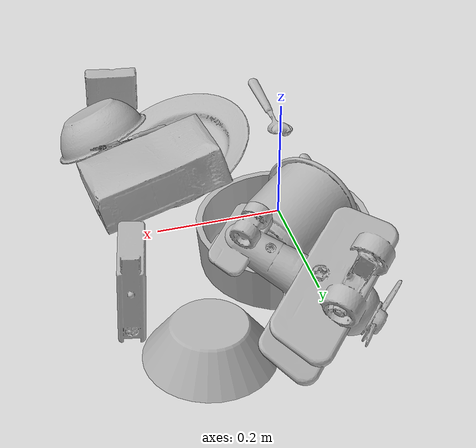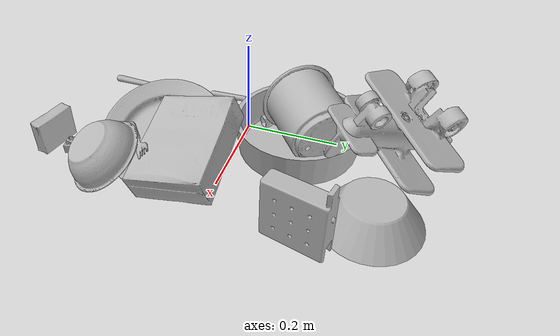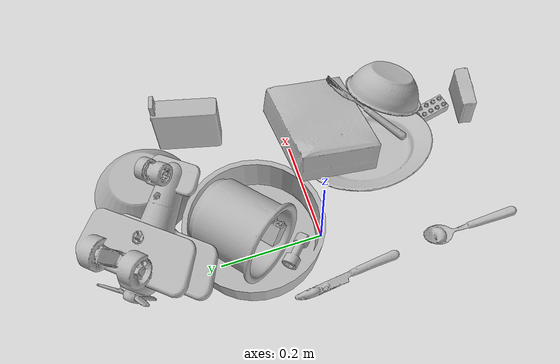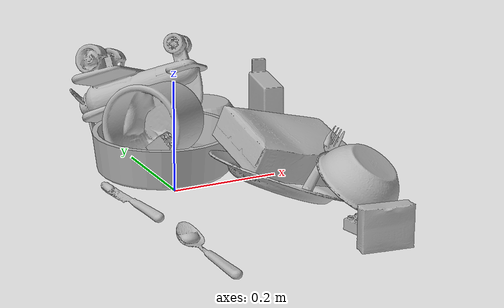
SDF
<sdf version="1.4">
  <world name="default">
    <light name="light1" type="point">
      <pose>0 0 1 0 0 0</pose>
      <diffuse>3 3 3 1</diffuse>
      <specular>3 3 3 1</specular>
    </light>
    <light name="light2" type="point">
      <pose>0 0.5 2 0 0 0</pose>
      <diffuse>1 1 1 1</diffuse>
      <specular>1 1 1 1</specular>
    </light>
    <light name="light3" type="point">
      <pose>0 0.5 2 0 0 0</pose>
      <diffuse>3 3 3 1</diffuse>
      <specular>3 3 3 1</specular>
    </light>
    <scene>
      <ambient>0.7 0.7 0.7</ambient>
    </scene>
    <model name="plate1">
      <link name="link_plate1">
        <collision name="default">
          <geometry>
            <mesh>
              <uri>model://plate/collision_meshes/collision.obj</uri>
              <scale>1.0 1.0 1.0</scale>
            </mesh>
          </geometry>
          <surface>
            <friction>
              <ode>
                <mu>0.5</mu>
                <mu2>0.5</mu2>
              </ode>
            </friction>
          <contact>
        <ode>
            <max_vel>0</max_vel>
            <min_depth>0.0001</min_depth>
            <kp>1e8</kp>
        </ode>
    </contact></surface>
        </collision>
        <visual name="default">
          <geometry>
            <mesh>
              <uri>model://plate/visual_meshes/visual.dae</uri>
              <scale>1.0 1.0 1.0</scale>
            </mesh>
          </geometry>
        </visual>
        <inertial>
          <mass>0.1516857147216797</mass>
          <pose>-0.0006044649053364992 0.00027825761935673654 -0.0010561972158029675 0.002218765199568956 -0.003225488596237322 0.4526153800388047</pose>
          <inertia>
            <ixx>0.00070958876</ixx>
            <iyy>0.0007028018</iyy>
            <izz>0.00138785</izz>
            <ixy>0</ixy>
            <ixz>0</ixz>
            <iyz>0</iyz>
          </inertia>
        </inertial>
      </link>
      <pose>0.13354730606079102 -0.13851764798164368 0.04286189749836922 0.3687815077757032 0.0985706988574769 1.4762564863860341</pose>
    </model>
    <model name="plate2">
      <link name="link_plate2">
        <collision name="default">
          <geometry>
            <mesh>
              <uri>model://pan_tefal/collision_meshes/collision.obj</uri>
              <scale>1.0 1.0 1.0</scale>
            </mesh>
          </geometry>
          <surface>
            <friction>
              <ode>
                <mu>0.5</mu>
                <mu2>0.5</mu2>
              </ode>
            </friction>
          <contact>
        <ode>
            <max_vel>0</max_vel>
            <min_depth>0.0001</min_depth>
            <kp>1e8</kp>
        </ode>
    </contact></surface>
        </collision>
        <visual name="default">
          <geometry>
            <mesh>
              <uri>model://pan_tefal/visual_meshes/visual.dae</uri>
              <scale>1.0 1.0 1.0</scale>
            </mesh>
          </geometry>
        </visual>
        <inertial>
          <mass>1.0862284898757935</mass>
          <pose>-0.00018001910939347 3.2794348953757435e-05 -0.00851493515074253 0.0008190334899032376 -0.0003301482999058744 -0.3318501395419688</pose>
          <inertia>
            <ixx>0.0074981838</ixx>
            <iyy>0.007546525</iyy>
            <izz>0.013802713</izz>
            <ixy>0</ixy>
            <ixz>0</ixz>
            <iyz>0</iyz>
          </inertia>
        </inertial>
      </link>
      <pose>0.03329464793205261 0.12173663824796677 0.03805017098784447 2.120726551830949e-07 -8.909813123765359e-06 1.7507063158041134</pose>
    </model>
    <model name="bowl1">
      <link name="link_bowl1">
        <collision name="default">
          <geometry>
            <mesh>
              <uri>model://bowl_a/collision_meshes/collision.obj</uri>
              <scale>1.0 1.0 1.0</scale>
            </mesh>
          </geometry>
          <surface>
            <friction>
              <ode>
                <mu>0.5</mu>
                <mu2>0.5</mu2>
              </ode>
            </friction>
          <contact>
        <ode>
            <max_vel>0</max_vel>
            <min_depth>0.0001</min_depth>
            <kp>1e8</kp>
        </ode>
    </contact></surface>
        </collision>
        <visual name="default">
          <geometry>
            <mesh>
              <uri>model://bowl_a/visual_meshes/visual.dae</uri>
              <scale>1.0 1.0 1.0</scale>
            </mesh>
          </geometry>
        </visual>
        <inertial>
          <mass>0.23323877155780792</mass>
          <pose>0.0002786752884276211 4.7312129026977345e-05 -0.001376529224216938 -0.000980538139416196 -0.00109382495954127 -0.19123674059098103</pose>
          <inertia>
            <ixx>0.0006640416</ixx>
            <iyy>0.0006681184</iyy>
            <izz>0.0011810234</izz>
            <ixy>0</ixy>
            <ixz>0</ixz>
            <iyz>0</iyz>
          </inertia>
        </inertial>
      </link>
      <pose>0.19864708185195923 0.301614910364151 0.030102118849754333 3.141583796840067 -8.115667339384395e-06 0.2061898076858002</pose>
    </model>
    <model name="bowl2">
      <link name="link_bowl2">
        <collision name="default">
          <geometry>
            <mesh>
              <uri>model://bowl/collision_meshes/collision.obj</uri>
              <scale>1.0 1.0 1.0</scale>
            </mesh>
          </geometry>
          <surface>
            <friction>
              <ode>
                <mu>0.5</mu>
                <mu2>0.5</mu2>
              </ode>
            </friction>
          <contact>
        <ode>
            <max_vel>0</max_vel>
            <min_depth>0.0001</min_depth>
            <kp>1e8</kp>
        </ode>
    </contact></surface>
        </collision>
        <visual name="default">
          <geometry>
            <mesh>
              <uri>model://bowl/visual_meshes/visual.dae</uri>
              <scale>1.0 1.0 1.0</scale>
            </mesh>
          </geometry>
        </visual>
        <inertial>
          <mass>0.08787161856889725</mass>
          <pose>0.00020445531117729843 -0.0010302038863301277 -0.0008042651461437345 -0.015764035308279474 0.014546860922519275 0.7140443952173783</pose>
          <inertia>
            <ixx>0.00020184812</ixx>
            <iyy>0.00019733804</iyy>
            <izz>0.00033957793</izz>
            <ixy>0</ixy>
            <ixz>0</ixz>
            <iyz>0</iyz>
          </inertia>
        </inertial>
      </link>
      <pose>0.2471444010734558 -0.22497279942035675 0.0657411739230156 -2.9933208215005056 0.5551563160279156 -0.5900842180616683</pose>
    </model>
    <model name="silverware1">
      <link name="link_silverware1">
        <collision name="default">
          <geometry>
            <mesh>
              <uri>model://spoon/collision_meshes/collision.obj</uri>
              <scale>1.0 1.0 1.0</scale>
            </mesh>
          </geometry>
          <surface>
            <friction>
              <ode>
                <mu>0.5</mu>
                <mu2>0.5</mu2>
              </ode>
            </friction>
          <contact>
        <ode>
            <max_vel>0</max_vel>
            <min_depth>0.0001</min_depth>
            <kp>1e8</kp>
        </ode>
    </contact></surface>
        </collision>
        <visual name="default">
          <geometry>
            <mesh>
              <uri>model://spoon/visual_meshes/visual.dae</uri>
              <scale>1.0 1.0 1.0</scale>
            </mesh>
          </geometry>
        </visual>
        <inertial>
          <mass>0.028818774968385696</mass>
          <pose>-0.0055263228714466095 -0.0016034181462600827 -0.0007271657814271748 0.03521556092832266 -0.039065843026344464 0.006150610888934851</pose>
          <inertia>
            <ixx>1.6029475e-06</ixx>
            <iyy>0.0001096545</iyy>
            <izz>0.000110445</izz>
            <ixy>0</ixy>
            <ixz>0</ixz>
            <iyz>0</iyz>
          </inertia>
        </inertial>
      </link>
      <pose>-0.07219292968511581 -0.27722564339637756 0.00838526152074337 0.006728782216999977 0.026892999697129563 1.5782586782756534</pose>
    </model>
    <model name="box1">
      <link name="link_box1">
        <collision name="default">
          <geometry>
            <mesh>
              <uri>model://cracker_box/collision_meshes/collision.obj</uri>
              <scale>1.0 1.0 1.0</scale>
            </mesh>
          </geometry>
          <surface>
            <friction>
              <ode>
                <mu>0.5</mu>
                <mu2>0.5</mu2>
              </ode>
            </friction>
          <contact>
        <ode>
            <max_vel>0</max_vel>
            <min_depth>0.0001</min_depth>
            <kp>1e8</kp>
        </ode>
    </contact></surface>
        </collision>
        <visual name="default">
          <geometry>
            <mesh>
              <uri>model://cracker_box/visual_meshes/visual.dae</uri>
              <scale>1.0 1.0 1.0</scale>
            </mesh>
          </geometry>
        </visual>
        <inertial>
          <mass>2.9781224727630615</mass>
          <pose>0.0009464174509048462 0.00025434247800149024 -0.0017029534792527556 -0.0003162077703261406 -0.01110649239447325 0.0025467938390949236</pose>
          <inertia>
            <ixx>0.007575013</ixx>
            <iyy>0.012507835</iyy>
            <izz>0.017849829</izz>
            <ixy>0</ixy>
            <ixz>0</ixz>
            <iyz>0</iyz>
          </inertia>
        </inertial>
      </link>
      <pose>0.1909242570400238 -0.061953600496053696 0.07357592135667801 0.21360603853317464 0.26767943452933884 0.04649675450037037</pose>
    </model>
    <model name="box2">
      <link name="link_box2">
        <collision name="default">
          <geometry>
            <mesh>
              <uri>model://gelatin_box/collision_meshes/collision.obj</uri>
              <scale>1.0 1.0 1.0</scale>
            </mesh>
          </geometry>
          <surface>
            <friction>
              <ode>
                <mu>0.5</mu>
                <mu2>0.5</mu2>
              </ode>
            </friction>
          <contact>
        <ode>
            <max_vel>0</max_vel>
            <min_depth>0.0001</min_depth>
            <kp>1e8</kp>
        </ode>
    </contact></surface>
        </collision>
        <visual name="default">
          <geometry>
            <mesh>
              <uri>model://gelatin_box/visual_meshes/visual.dae</uri>
              <scale>1.0 1.0 1.0</scale>
            </mesh>
          </geometry>
        </visual>
        <inertial>
          <mass>0.16266882419586182</mass>
          <pose>0.0004319618456065655 0.00011156871914863586 -0.0003640321083366871 -0.0010503720968416132 -0.004755819155016646 0.016440559472150423</pose>
          <inertia>
            <ixx>0.00011483092</ixx>
            <iyy>8.202313e-05</iyy>
            <izz>0.00017479825</izz>
            <ixy>0</ixy>
            <ixz>0</ixz>
            <iyz>0</iyz>
          </inertia>
        </inertial>
      </link>
      <pose>0.18905577063560486 -0.371802419424057 0.03643914312124252 0.21419142992421872 -1.5414471053675312 1.1745567403856367</pose>
    </model>
    <model name="cup1">
      <link name="link_cup1">
        <collision name="default">
          <geometry>
            <mesh>
              <uri>model://f_cups/collision_meshes/collision.obj</uri>
              <scale>2.0 2.0 2.0</scale>
            </mesh>
          </geometry>
          <surface>
            <friction>
              <ode>
                <mu>0.5</mu>
                <mu2>0.5</mu2>
              </ode>
            </friction>
          <contact>
        <ode>
            <max_vel>0</max_vel>
            <min_depth>0.0001</min_depth>
            <kp>1e8</kp>
        </ode>
    </contact></surface>
        </collision>
        <visual name="default">
          <geometry>
            <mesh>
              <uri>model://f_cups/visual_meshes/visual.dae</uri>
              <scale>2.0 2.0 2.0</scale>
            </mesh>
          </geometry>
        </visual>
        <inertial>
          <mass>0.6683602333068848</mass>
          <pose>-0.006342936307191849 -0.0012480152072384953 -0.0073110745288431644 0.7862253042657107 -0.260793604503958 -0.18237387444081576</pose>
          <inertia>
            <ixx>0.0025131067</ixx>
            <iyy>0.0026362767</iyy>
            <izz>0.0027444381</izz>
            <ixy>0</ixy>
            <ixz>0</ixz>
            <iyz>0</iyz>
          </inertia>
        </inertial>
      </link>
      <pose>0.03272835910320282 0.14660897850990295 0.08179090172052383 1.4738143690148096 0.2363056114624361 -0.9167845825958769</pose>
    </model>
    <model name="silverware2">
      <link name="link_silverware2">
        <collision name="default">
          <geometry>
            <mesh>
              <uri>model://knife/collision_meshes/collision.obj</uri>
              <scale>1.0 1.0 1.0</scale>
            </mesh>
          </geometry>
          <surface>
            <friction>
              <ode>
                <mu>0.5</mu>
                <mu2>0.5</mu2>
              </ode>
            </friction>
          <contact>
        <ode>
            <max_vel>0</max_vel>
            <min_depth>0.0001</min_depth>
            <kp>1e8</kp>
        </ode>
    </contact></surface>
        </collision>
        <visual name="default">
          <geometry>
            <mesh>
              <uri>model://knife/visual_meshes/visual.dae</uri>
              <scale>1.0 1.0 1.0</scale>
            </mesh>
          </geometry>
        </visual>
        <inertial>
          <mass>0.03087119571864605</mass>
          <pose>-0.023785250261425972 0.0015275123296305537 5.062009586254135e-05 0.07305987484925712 0.017248420899959087 -0.007409824084002247</pose>
          <inertia>
            <ixx>8.762499e-07</ixx>
            <iyy>0.000118602155</iyy>
            <izz>0.00011888435</izz>
            <ixy>0</ixy>
            <ixz>0</ixz>
            <iyz>0</iyz>
          </inertia>
        </inertial>
      </link>
      <pose>-0.09500467032194138 -0.020110316574573517 0.005810763221234083 2.889375618652378 0.025915017425278825 1.6818730269853628</pose>
    </model>
    <model name="silverware3">
      <link name="link_silverware3">
        <collision name="default">
          <geometry>
            <mesh>
              <uri>model://fork/collision_meshes/collision.obj</uri>
              <scale>1.0 1.0 1.0</scale>
            </mesh>
          </geometry>
          <surface>
            <friction>
              <ode>
                <mu>0.5</mu>
                <mu2>0.5</mu2>
              </ode>
            </friction>
          <contact>
        <ode>
            <max_vel>0</max_vel>
            <min_depth>0.0001</min_depth>
            <kp>1e8</kp>
        </ode>
    </contact></surface>
        </collision>
        <visual name="default">
          <geometry>
            <mesh>
              <uri>model://fork/visual_meshes/visual.dae</uri>
              <scale>1.0 1.0 1.0</scale>
            </mesh>
          </geometry>
        </visual>
        <inertial>
          <mass>0.015284496359527111</mass>
          <pose>-0.02957003004848957 0.00046588233090005815 0.00032188600744120777 -0.013550803329795006 -0.010977829430356707 0.014453895799763906</pose>
          <inertia>
            <ixx>5.358081e-07</ixx>
            <iyy>3.9903432e-05</iyy>
            <izz>4.0143095e-05</izz>
            <ixy>0</ixy>
            <ixz>0</ixz>
            <iyz>0</iyz>
          </inertia>
        </inertial>
      </link>
      <pose>0.20166227221488953 -0.16021980345249176 0.07187750190496445 0.6584678718850326 -0.3055264632664172 0.700374011969274</pose>
    </model>
    <model name="toy1">
      <link name="link_toy1">
        <collision name="default">
          <geometry>
            <mesh>
              <uri>model://c_toy_airplane/collision_meshes/collision.obj</uri>
              <scale>1.0 1.0 1.0</scale>
            </mesh>
          </geometry>
          <surface>
            <friction>
              <ode>
                <mu>0.5</mu>
                <mu2>0.5</mu2>
              </ode>
            </friction>
          <contact>
        <ode>
            <max_vel>0</max_vel>
            <min_depth>0.0001</min_depth>
            <kp>1e8</kp>
        </ode>
    </contact></surface>
        </collision>
        <visual name="default">
          <geometry>
            <mesh>
              <uri>model://c_toy_airplane/visual_meshes/visual.dae</uri>
              <scale>1.0 1.0 1.0</scale>
            </mesh>
          </geometry>
        </visual>
        <inertial>
          <mass>0.014899278059601784</mass>
          <pose>-0.0002302424400113523 -4.428088118402229e-07 -0.006080529186874628 -0.00619304524108313 -0.016797611161866028 0.7655100812139064</pose>
          <inertia>
            <ixx>6.841441e-06</ixx>
            <iyy>6.822133e-06</iyy>
            <izz>1.6062353e-06</izz>
            <ixy>0</ixy>
            <ixz>0</ixz>
            <iyz>0</iyz>
          </inertia>
        </inertial>
      </link>
      <pose>-0.022031841799616814 0.05721866339445114 0.022398747503757477 1.7343541585188602 -1.3084024931516998 0.6466053066601252</pose>
    </model>
    <model name="toy2">
      <link name="link_toy2">
        <collision name="default">
          <geometry>
            <mesh>
              <uri>model://nine_hole_peg_test/collision_meshes/collision.obj</uri>
              <scale>1.0 1.0 1.0</scale>
            </mesh>
          </geometry>
          <surface>
            <friction>
              <ode>
                <mu>0.5</mu>
                <mu2>0.5</mu2>
              </ode>
            </friction>
          <contact>
        <ode>
            <max_vel>0</max_vel>
            <min_depth>0.0001</min_depth>
            <kp>1e8</kp>
        </ode>
    </contact></surface>
        </collision>
        <visual name="default">
          <geometry>
            <mesh>
              <uri>model://nine_hole_peg_test/visual_meshes/visual.dae</uri>
              <scale>1.0 1.0 1.0</scale>
            </mesh>
          </geometry>
        </visual>
        <inertial>
          <mass>0.8674170970916748</mass>
          <pose>-0.004617386031895876 -0.009647614322602749 2.6460689696250483e-05 -0.0014666783129250742 0.0007194188660534222 -0.6342410037611789</pose>
          <inertia>
            <ixx>0.0013563493</ixx>
            <iyy>0.0012664091</iyy>
            <izz>0.0023767245</izz>
            <ixy>0</ixy>
            <ixz>0</ixz>
            <iyz>0</iyz>
          </inertia>
        </inertial>
      </link>
      <pose>0.2848089933395386 0.1887444406747818 0.07397235929965973 1.5550132580208325 -0.009801245893434094 1.3276181052616818</pose>
    </model>
    <model name="toy3">
      <link name="link_toy3">
        <collision name="default">
          <geometry>
            <mesh>
              <uri>model://a_toy_airplane/collision_meshes/collision.obj</uri>
              <scale>1.0 1.0 1.0</scale>
            </mesh>
          </geometry>
          <surface>
            <friction>
              <ode>
                <mu>0.5</mu>
                <mu2>0.5</mu2>
              </ode>
            </friction>
          <contact>
        <ode>
            <max_vel>0</max_vel>
            <min_depth>0.0001</min_depth>
            <kp>1e8</kp>
        </ode>
    </contact></surface>
        </collision>
        <visual name="default">
          <geometry>
            <mesh>
              <uri>model://a_toy_airplane/visual_meshes/visual.dae</uri>
              <scale>1.0 1.0 1.0</scale>
            </mesh>
          </geometry>
        </visual>
        <inertial>
          <mass>1.0043106079101562</mass>
          <pose>0.02516508847475052 -0.003707321360707283 -0.0011962434509769082 -0.01201694293172648 -0.14663499629613377 0.0041490900747424425</pose>
          <inertia>
            <ixx>0.0036471337</ixx>
            <iyy>0.0053146123</iyy>
            <izz>0.0062227584</izz>
            <ixy>0</ixy>
            <ixz>0</ixz>
            <iyz>0</iyz>
          </inertia>
        </inertial>
      </link>
      <pose>0.06389757245779037 0.29838812351226807 0.10930289328098297 -2.8227554465640092 0.2136000340292492 2.4189107535502297</pose>
    </model>
    <model name="toy4">
      <link name="link_toy4">
        <collision name="default">
          <geometry>
            <mesh>
              <uri>model://c_lego_duplo/collision_meshes/collision.obj</uri>
              <scale>1.0 1.0 1.0</scale>
            </mesh>
          </geometry>
          <surface>
            <friction>
              <ode>
                <mu>0.5</mu>
                <mu2>0.5</mu2>
              </ode>
            </friction>
          <contact>
        <ode>
            <max_vel>0</max_vel>
            <min_depth>0.0001</min_depth>
            <kp>1e8</kp>
        </ode>
    </contact></surface>
        </collision>
        <visual name="default">
          <geometry>
            <mesh>
              <uri>model://c_lego_duplo/visual_meshes/visual.dae</uri>
              <scale>1.0 1.0 1.0</scale>
            </mesh>
          </geometry>
        </visual>
        <inertial>
          <mass>0.019874408841133118</mass>
          <pose>0.0003164595691487193 0.0001946465636137873 0.0010453156428411603 -0.01152079101413275 0.005900072799474436 0.031100350485514378</pose>
          <inertia>
            <ixx>7.648045e-06</ixx>
            <iyy>2.443061e-06</iyy>
            <izz>8.937529e-06</izz>
            <ixy>0</ixy>
            <ixz>0</ixz>
            <iyz>0</iyz>
          </inertia>
        </inertial>
      </link>
      <pose>0.1934637725353241 -0.307614803314209 0.011981488205492496 0.00801937037482956 -0.0020916858168992776 0.19666473326399256</pose>
    </model>
    <model name="toy5">
      <link name="link_toy5">
        <collision name="default">
          <geometry>
            <mesh>
              <uri>model://b_lego_duplo/collision_meshes/collision.obj</uri>
              <scale>1.0 1.0 1.0</scale>
            </mesh>
          </geometry>
          <surface>
            <friction>
              <ode>
                <mu>0.5</mu>
                <mu2>0.5</mu2>
              </ode>
            </friction>
          <contact>
        <ode>
            <max_vel>0</max_vel>
            <min_depth>0.0001</min_depth>
            <kp>1e8</kp>
        </ode>
    </contact></surface>
        </collision>
        <visual name="default">
          <geometry>
            <mesh>
              <uri>model://b_lego_duplo/visual_meshes/visual.dae</uri>
              <scale>1.0 1.0 1.0</scale>
            </mesh>
          </geometry>
        </visual>
        <inertial>
          <mass>0.031542204320430756</mass>
          <pose>-0.0001105302435462363 -9.152341590379365e-06 0.001929428894072771 -0.03749493031375769 -0.026354084635952003 0.4518990108557965</pose>
          <inertia>
            <ixx>6.4553496e-06</ixx>
            <iyy>6.4987444e-06</iyy>
            <izz>5.7515063e-06</izz>
            <ixy>0</ixy>
            <ixz>0</ixz>
            <iyz>0</iyz>
          </inertia>
        </inertial>
      </link>
      <pose>0.016556695103645325 0.0904361754655838 0.055192962288856506 -0.031204036436855473 0.848393008457208 -0.9021682738772446</pose>
    </model>
  <physics type="ode">
      <max_contacts>50</max_contacts>
      <ode>
        <solver>
          <type>quick</type>
          <iters>75</iters>
        </solver>
        <constraints>
          <contact_max_correcting_vel>0</contact_max_correcting_vel>
          <contact_surface_layer>0</contact_surface_layer>
        </constraints>
      </ode>
    </physics></world>
</sdf>
